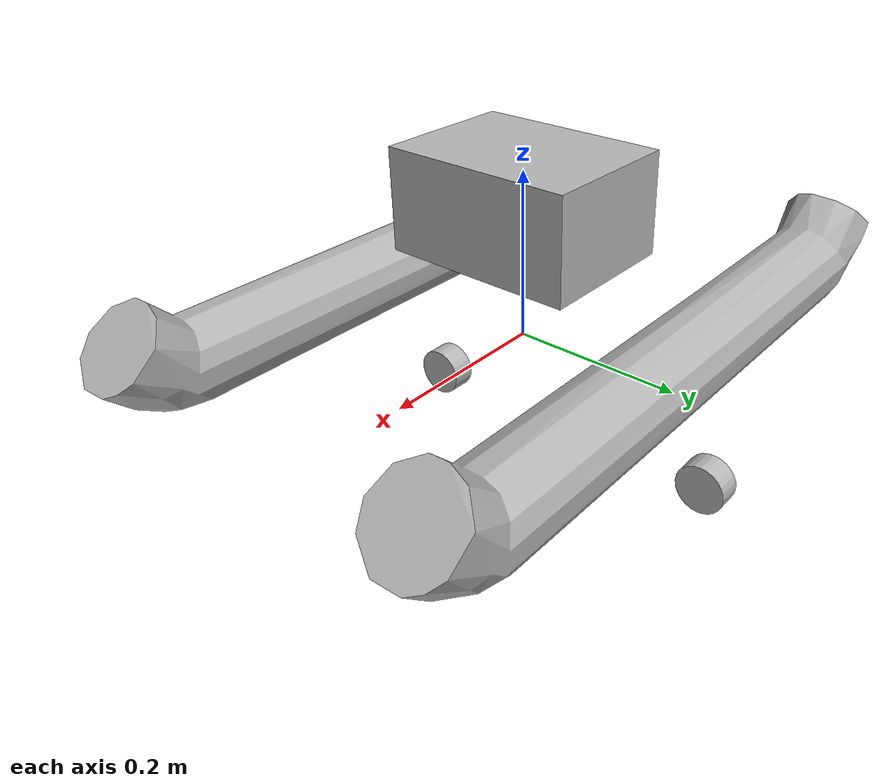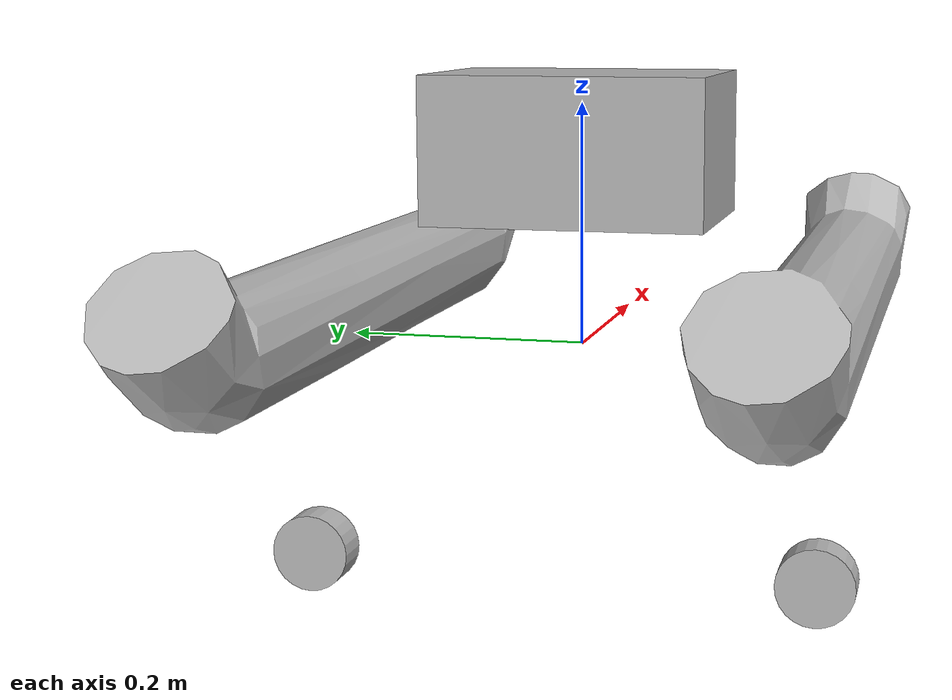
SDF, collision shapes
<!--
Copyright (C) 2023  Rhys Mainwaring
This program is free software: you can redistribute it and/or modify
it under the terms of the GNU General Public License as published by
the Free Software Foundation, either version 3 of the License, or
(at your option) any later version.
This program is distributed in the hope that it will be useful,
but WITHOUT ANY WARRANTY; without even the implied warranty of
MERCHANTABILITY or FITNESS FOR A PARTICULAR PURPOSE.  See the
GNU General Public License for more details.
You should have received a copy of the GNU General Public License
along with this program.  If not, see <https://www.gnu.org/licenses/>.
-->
<?xml version="1.0" ?>
<sdf version="1.6">
  <model name="jubilee_cat">
    <link name="base_link">
      <pose>0 0 0 0 0 0</pose>
      <inertial>
        <pose>0 0 0.03 0 0 0</pose>
        <mass>4</mass>
        <inertia>
          <ixx>0.091241667</ixx>
          <ixy>0</ixy>
          <ixz>0</ixz>
          <iyy>0.233321667</iyy>
          <iyz>0</iyz>
          <izz>0.312770667</izz>
        </inertia>
      </inertial>
      <collision name="left_hull_collision">
        <pose>0 0.2 0 0 0 0</pose>
        <geometry>
          <mesh>
            <uri>model://jubilee_cat/meshes/jubilee_cat_hull_collision.stl</uri>
          </mesh>
          <!-- box for inertial approx -->
        </geometry>
      </collision>
      <collision name="right_hull_collision">
        <pose>0 -0.2 0 0 0 0</pose>
        <geometry>
          <mesh>
            <uri>model://jubilee_cat/meshes/jubilee_cat_hull_collision.stl</uri>
          </mesh>
        </geometry>
      </collision>
      <visual name="base_link_visual">
        <pose>0 0 0 0 0 0</pose>
        <geometry>
          <mesh>
            <uri>model://jubilee_cat/meshes/jubilee_cat_base.dae</uri>
          </mesh>
        </geometry>
      </visual>
      <sensor name="imu_sensor" type="imu">
        <pose>0 0 0 3.141593 0 0</pose>
        <always_on>1</always_on>
        <update_rate>1000</update_rate>
      </sensor>

      <!-- todo place on separate link -->
        <sensor name="magnetometer_sensor" type="magnetometer">
          <always_on>1</always_on>
          <update_rate>30</update_rate>
        </sensor>

      <!-- todo place on separate link -->
      <sensor name="navsat_sensor" type="navsat">
        <always_on>1</always_on>
        <update_rate>30</update_rate>
      </sensor>

      <!-- todo place on separate link -->
      <sensor name="anemometer_sensor" type="custom" gz:type="anemometer">
        <always_on>1</always_on>
        <update_rate>30</update_rate>
      </sensor>

      <!-- todo place on separate link -->
      <sensor name="camera" type="camera">
        <pose>0.2 0 0.15 0 0 0</pose>
        <always_on>1</always_on>
        <update_rate>30</update_rate>
        <camera>
          <horizontal_fov>1.047</horizontal_fov>
          <image>
            <width>320</width>
            <height>240</height>
          </image>
          <clip>
            <near>0.1</near>
            <far>100</far>
          </clip>
        </camera>
      </sensor>

    </link>

    <!-- left motor cw -->
    <link name="left_motor_link">
      <pose relative_to="left_motor_joint">0 0 0 0 0 0</pose>
      <inertial>
        <mass>0.1</mass>
        <inertia>
          <ixx>3.39213E-05</ixx>
          <ixy>0</ixy>
          <ixz>0</ixz>
          <iyy>3.39213E-05</iyy>
          <iyz>0</iyz>
          <izz>0.0000512</izz>
        </inertia>
      </inertial>
      <collision name="collision">
        <geometry>
          <cylinder>
            <radius>0.032</radius>
            <length>0.0316</length>
          </cylinder>
        </geometry>
      </collision>
      <visual name="visual">
        <geometry>
          <mesh>
            <uri>model://jubilee_cat/meshes/jubilee_cat_cw_prop.dae</uri>
          </mesh>
        </geometry>
      </visual>
    </link>
    <joint name="left_motor_joint" type="revolute">
      <pose relative_to="base_link">-0.085013 0.2086 -0.16793 0 1.5708 0</pose>
      <child>left_motor_link</child>
      <parent>base_link</parent>
      <axis>
        <xyz>0 0 1</xyz>
        <limit>
          <lower>-1.0E+8</lower>
          <upper>1.0E+8</upper>
        </limit>
        <dynamics>
          <damping>0.001</damping>
        </dynamics>
      </axis>
    </joint>

    <!-- right motor ccw -->
    <link name="right_motor_link">
      <pose relative_to="right_motor_joint">0 0 0 0 0 0</pose>
      <inertial>
        <mass>0.1</mass>
        <inertia>
          <ixx>3.39213E-05</ixx>
          <ixy>0</ixy>
          <ixz>0</ixz>
          <iyy>3.39213E-05</iyy>
          <iyz>0</iyz>
          <izz>0.0000512</izz>
        </inertia>
      </inertial>
      <collision name="collision">
        <geometry>
          <cylinder>
            <radius>0.032</radius>
            <length>0.0316</length>
          </cylinder>
        </geometry>
      </collision>
      <visual name="visual">
        <geometry>
          <mesh>
            <uri>model://jubilee_cat/meshes/jubilee_cat_ccw_prop.dae</uri>
          </mesh>
        </geometry>
      </visual>
    </link>
    <joint name="right_motor_joint" type="revolute">
      <pose relative_to="base_link">-0.085013 -0.2086 -0.16793 0 1.5708 0</pose>
      <child>right_motor_link</child>
      <parent>base_link</parent>
      <axis>
        <xyz>0 0 1</xyz>
        <limit>
          <lower>-1.0E+8</lower>
          <upper>1.0E+8</upper>
        </limit>
        <dynamics>
          <damping>0.001</damping>
        </dynamics>
      </axis>
    </joint>

    <link name="electrical_box_link">
      <pose>0 0 0.165 0 0 0</pose>
      <inertial>
        <mass>0.5</mass>
        <inertia>
          <ixx>0.002804167</ixx>
          <ixy>0</ixy>
          <ixz>0</ixz>
          <iyy>0.001804167</iyy>
          <iyz>0</iyz>
          <izz>0.003408333</izz>
        </inertia>
      </inertial>
      <collision name="collision">
        <geometry>
          <box>
            <size>0.17 0.23 0.12</size>
          </box>
        </geometry>
      </collision>
      <visual name="visual">
        <pose>0 0 -0.055 1.57 3.14159 0</pose>
        <geometry>
          <mesh>
            <uri>model://jubilee_cat/meshes/electrical_box.dae</uri>
            <scale>0.4 0.4 0.4</scale>
          </mesh>
        </geometry>
      </visual>
    </link>
    <joint name="electrical_box_joint" type="revolute">
      <child>electrical_box_link</child>
      <parent>base_link</parent>
      <axis>
        <xyz>0 0 1</xyz>
        <limit>
          <lower>0</lower>
          <upper>0</upper>
        </limit>
        <dynamics>
          <damping>1.</damping>
        </dynamics>
      </axis>
    </joint>

    <!-- Plugins -->
    <plugin
      name="gz::sim::systems::JointStatePublisher"
      filename="gz-sim-joint-state-publisher-system">
    </plugin>

    <!-- left motor thruster cw -->
    <plugin
      name="gz::sim::systems::Thruster"
      filename="gz-sim-thruster-system">
      <namespace>jubilee_cat</namespace>
      <joint_name>left_motor_joint</joint_name>
      <thrust_coefficient>0.02</thrust_coefficient>
      <fluid_density>1025</fluid_density>
      <propeller_diameter>0.064</propeller_diameter>
      <velocity_control>0</velocity_control>
      <use_angvel_cmd>0</use_angvel_cmd>
    </plugin>

    <!-- right motor thruster ccw -->
    <plugin
      name="gz::sim::systems::Thruster"
      filename="gz-sim-thruster-system">
      <namespace>jubilee_cat</namespace>
      <joint_name>right_motor_joint</joint_name>
      <thrust_coefficient>-0.02</thrust_coefficient>
      <fluid_density>1025</fluid_density>
      <propeller_diameter>0.064</propeller_diameter>
      <velocity_control>0</velocity_control>
      <use_angvel_cmd>0</use_angvel_cmd>
    </plugin>

    <plugin
      name="gz::sim::systems::Hydrodynamics"
      filename="gz-waves1-hydrodynamics-system">

      <!-- Not working correctly for nested models? -->
      <enable>jubilee_cat::base_link::left_hull_collision</enable>
      <enable>jubilee_cat::base_link::right_hull_collision</enable>

      <hydrodynamics>
        <damping_on>1</damping_on>
        <viscous_drag_on>1</viscous_drag_on>
        <pressure_drag_on>1</pressure_drag_on>
      </hydrodynamics>
      <markers>
        <update_rate>10</update_rate>
        <water_patch>0</water_patch>
        <waterline>0</waterline>
        <underwater_surface>0</underwater_surface>
      </markers>
    </plugin>

    <!-- ArduPilot plugin -->
    <plugin
      name="ArduPilotPlugin"
      filename="ArduPilotPlugin">
      <fdm_addr>127.0.0.1</fdm_addr>
      <fdm_port_in>9002</fdm_port_in>
      <connectionTimeoutMaxCount>5</connectionTimeoutMaxCount>
      <lock_step>1</lock_step>
      <gazeboXYZToNED>0 0 0 3.141593 0 1.57079632</gazeboXYZToNED>
      <modelXYZToAirplaneXForwardZDown>0 0 0 3.141593 0 0</modelXYZToAirplaneXForwardZDown>
      <imuName>base_link::imu_sensor</imuName>
      <anemometer>base_link::anemometer_sensor</anemometer>

      <!--
        left motor cw

        SERVO1_FUNCTION 73 (ThrottleLeft)
        SERVO1_MAX 2000
        SERVO1_MIN 1000
      -->
      <control channel="0">
        <jointName>left_motor_joint</jointName>
        <multiplier>10</multiplier>
        <offset>-0.5</offset>
        <servo_min>1000</servo_min>
        <servo_max>2000</servo_max>
        <type>COMMAND</type>
        <cmd_topic>/model/jubilee_cat/joint/left_motor_joint/cmd_thrust</cmd_topic>
      </control>

      <!--
        right motor ccw

        SERVO3_FUNCTION 74 (ThrottleRight)
        SERVO3_MAX 2000
        SERVO3_MIN 1000
      -->
      <control channel="2">
        <jointName>right_motor_joint</jointName>
        <multiplier>10</multiplier>
        <offset>-0.5</offset>
        <servo_min>1000</servo_min>
        <servo_max>2000</servo_max>
        <type>COMMAND</type>
        <cmd_topic>/model/jubilee_cat/joint/right_motor_joint/cmd_thrust</cmd_topic>
      </control>
    </plugin>

  </model>
</sdf>
